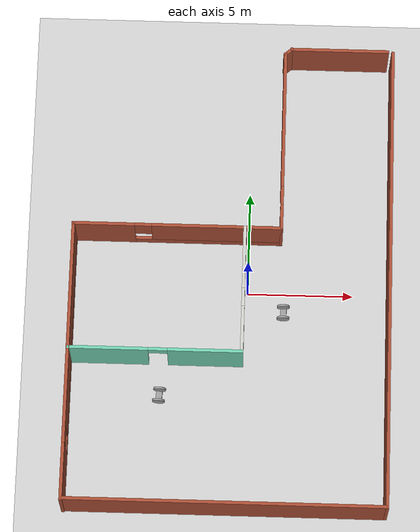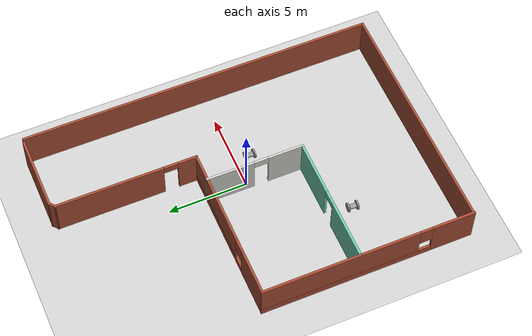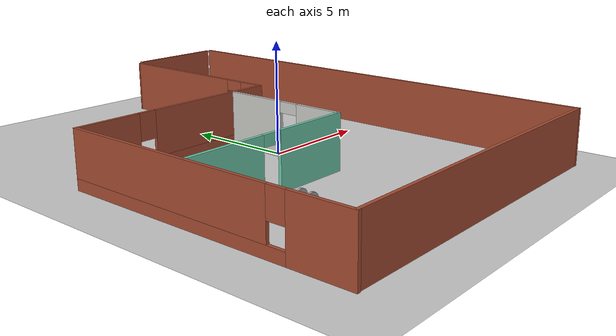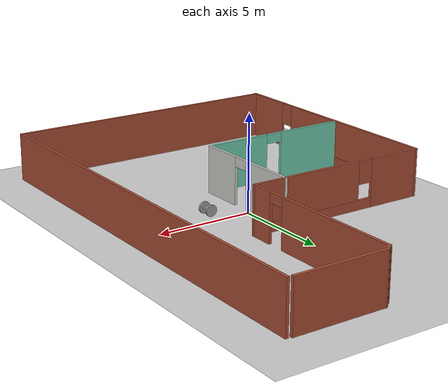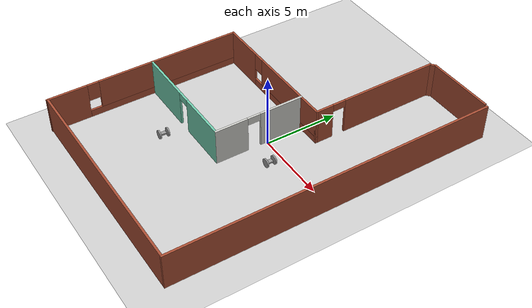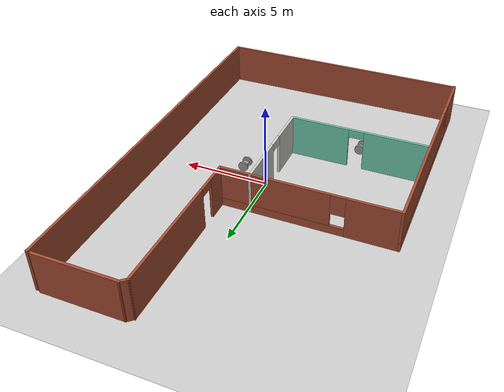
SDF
<sdf version="1.6">
 <world name="default">
  <light name="sun" type="directional">
   <pose>0 0 10 0 -0 0</pose>
   <diffuse>0.8 0.8 0.8 1</diffuse>
   <specular>0.2 0.2 0.2 1</specular>
   <attenuation>
    <range>1000</range>
    <constant>0.9</constant>
    <linear>0.01</linear>
    <quadratic>0.001</quadratic>
   </attenuation>
   <direction>-0.5 0.1 -0.9</direction>
  </light>
  <model name="ground_plane">
   <static>1</static>
   <link name="link">
    <collision name="collision">
     <geometry><plane><normal>0 0 1</normal><size>100 100</size></plane></geometry>
     <surface>
      <contact><collide_bitmask>65535</collide_bitmask></contact>
      <friction><ode><mu>100</mu><mu2>50</mu2></ode></friction>
     </surface>
    </collision>
    <visual name="visual">
     <cast_shadows>0</cast_shadows>
     <geometry><plane><normal>0 0 1</normal><size>100 100</size></plane></geometry>
     <material>
      <script><uri>file://media/materials/scripts/gazebo.material</uri><name>Gazebo/Grey</name></script>
     </material>
    </visual>
   </link>
  </model>
  <gravity>0 0 -9.8</gravity>
  <magnetic_field>6e-06 2.3e-05 -4.2e-05</magnetic_field>
  <atmosphere type="adiabatic"/>
  <physics name="default_physics" default="0" type="ode">
   <max_step_size>0.001</max_step_size>
   <real_time_factor>1</real_time_factor>
   <real_time_update_rate>1000</real_time_update_rate>
  </physics>
  <scene><ambient>0.4 0.4 0.4 1</ambient><background>0.7 0.7 0.7 1</background><shadows>1</shadows></scene>
  <spherical_coordinates>
   <surface_model>EARTH_WGS84</surface_model>
   <latitude_deg>0</latitude_deg>
   <longitude_deg>0</longitude_deg>
   <elevation>0</elevation>
   <heading_deg>0</heading_deg>
  </spherical_coordinates>
  <audio><device>default</device></audio>
  <model name="floor">
   <link name="Wall_1">
    <pose>-3.26123 11.2097 0 0 -0 0</pose>
    <visual name="Wall_1_Visual">
     <pose>0 0 1.25 0 -0 0</pose>
     <geometry><box><size>4.75 0.15 2.5</size></box></geometry>
     <material>
      <script><uri>file://media/materials/scripts/gazebo.material</uri><name>Gazebo/Bricks</name></script>
      <ambient>0.435294 0.796078 0.67451 1</ambient>
     </material>
     <meta><layer>0</layer></meta>
    </visual>
    <collision name="Wall_1_Collision">
     <pose>0 0 1.25 0 -0 0</pose>
     <geometry><box><size>4.75 0.15 2.5</size></box></geometry>
     <surface>
      <friction>
       <ode><mu>1</mu><mu2>1</mu2><fdir1>0 0 0</fdir1><slip1>0</slip1><slip2>0</slip2></ode>
       <torsional>
        <coefficient>1</coefficient>
        <patch_radius>0</patch_radius>
        <surface_radius>0</surface_radius>
        <use_patch_radius>1</use_patch_radius>
        <ode><slip>0</slip></ode>
       </torsional>
      </friction>
      <bounce><restitution_coefficient>0</restitution_coefficient><threshold>1e+06</threshold></bounce>
      <contact>
       <collide_without_contact>0</collide_without_contact>
       <collide_without_contact_bitmask>1</collide_without_contact_bitmask>
       <collide_bitmask>1</collide_bitmask>
       <ode>
        <soft_cfm>0</soft_cfm>
        <soft_erp>0.2</soft_erp>
        <kp>1e+13</kp>
        <kd>1</kd>
        <max_vel>0.01</max_vel>
        <min_depth>0</min_depth>
       </ode>
       <bullet>
        <split_impulse>1</split_impulse>
        <split_impulse_penetration_threshold>-0.01</split_impulse_penetration_threshold>
        <soft_cfm>0</soft_cfm>
        <soft_erp>0.2</soft_erp>
        <kp>1e+13</kp>
        <kd>1</kd>
       </bullet>
      </contact>
     </surface>
    </collision>
   </link>
   <link name="Wall_10">
    <pose>-5.71122 11.0847 0 0 -0 0.694738</pose>
    <visual name="Wall_10_Visual">
     <pose>0 0 1.25 0 -0 0</pose>
     <geometry><box><size>0.540512 0.15 2.5</size></box></geometry>
     <material>
      <script><uri>file://media/materials/scripts/gazebo.material</uri><name>Gazebo/Bricks</name></script>
      <ambient>0.435294 0.796078 0.67451 1</ambient>
     </material>
     <meta><layer>0</layer></meta>
    </visual>
    <collision name="Wall_10_Collision">
     <pose>0 0 1.25 0 -0 0</pose>
     <geometry><box><size>0.540512 0.15 2.5</size></box></geometry>
     <surface>
      <friction>
       <ode><mu>1</mu><mu2>1</mu2><fdir1>0 0 0</fdir1><slip1>0</slip1><slip2>0</slip2></ode>
       <torsional>
        <coefficient>1</coefficient>
        <patch_radius>0</patch_radius>
        <surface_radius>0</surface_radius>
        <use_patch_radius>1</use_patch_radius>
        <ode><slip>0</slip></ode>
       </torsional>
      </friction>
      <bounce><restitution_coefficient>0</restitution_coefficient><threshold>1e+06</threshold></bounce>
      <contact>
       <collide_without_contact>0</collide_without_contact>
       <collide_without_contact_bitmask>1</collide_without_contact_bitmask>
       <collide_bitmask>1</collide_bitmask>
       <ode>
        <soft_cfm>0</soft_cfm>
        <soft_erp>0.2</soft_erp>
        <kp>1e+13</kp>
        <kd>1</kd>
        <max_vel>0.01</max_vel>
        <min_depth>0</min_depth>
       </ode>
       <bullet>
        <split_impulse>1</split_impulse>
        <split_impulse_penetration_threshold>-0.01</split_impulse_penetration_threshold>
        <soft_cfm>0</soft_cfm>
        <soft_erp>0.2</soft_erp>
        <kp>1e+13</kp>
        <kd>1</kd>
       </bullet>
      </contact>
     </surface>
    </collision>
   </link>
   <link name="Wall_12">
    <pose>-7.58378 -0.937122 0 0 0 -1.5708</pose>
    <visual name="Wall_12_Visual_0">
     <pose>-1.59262 0 1.25 0 -0 0</pose>
     <geometry><box><size>3.06475 0.15 2.5</size></box></geometry>
     <material>
      <script><uri>file://media/materials/scripts/gazebo.material</uri><name>Gazebo/CeilingTiled</name></script>
      <ambient>0.435294 0.796078 0.67451 1</ambient>
     </material>
     <meta><layer>0</layer></meta>
    </visual>
    <visual name="Wall_12_Visual_1">
     <pose>1.98238 0 1.25 0 -0 0</pose>
     <geometry><box><size>2.28525 0.15 2.5</size></box></geometry>
     <material>
      <script><uri>file://media/materials/scripts/gazebo.material</uri><name>Gazebo/CeilingTiled</name></script>
      <ambient>0.435294 0.796078 0.67451 1</ambient>
     </material>
     <meta><layer>0</layer></meta>
    </visual>
    <visual name="Wall_12_Visual_2">
     <pose>0.389755 0 2.25 0 -0 0</pose>
     <geometry><box><size>0.9 0.15 0.5</size></box></geometry>
     <material>
      <script><uri>file://media/materials/scripts/gazebo.material</uri><name>Gazebo/CeilingTiled</name></script>
      <ambient>0.435294 0.796078 0.67451 1</ambient>
     </material>
     <meta><layer>0</layer></meta>
    </visual>
    <collision name="Wall_12_Collision_0">
     <pose>-1.59262 0 1.25 0 -0 0</pose>
     <geometry><box><size>3.06475 0.15 2.5</size></box></geometry>
     <surface>
      <friction>
       <ode><mu>1</mu><mu2>1</mu2><fdir1>0 0 0</fdir1><slip1>0</slip1><slip2>0</slip2></ode>
       <torsional>
        <coefficient>1</coefficient>
        <patch_radius>0</patch_radius>
        <surface_radius>0</surface_radius>
        <use_patch_radius>1</use_patch_radius>
        <ode><slip>0</slip></ode>
       </torsional>
      </friction>
      <bounce><restitution_coefficient>0</restitution_coefficient><threshold>1e+06</threshold></bounce>
      <contact>
       <collide_without_contact>0</collide_without_contact>
       <collide_without_contact_bitmask>1</collide_without_contact_bitmask>
       <collide_bitmask>1</collide_bitmask>
       <ode>
        <soft_cfm>0</soft_cfm>
        <soft_erp>0.2</soft_erp>
        <kp>1e+13</kp>
        <kd>1</kd>
        <max_vel>0.01</max_vel>
        <min_depth>0</min_depth>
       </ode>
       <bullet>
        <split_impulse>1</split_impulse>
        <split_impulse_penetration_threshold>-0.01</split_impulse_penetration_threshold>
        <soft_cfm>0</soft_cfm>
        <soft_erp>0.2</soft_erp>
        <kp>1e+13</kp>
        <kd>1</kd>
       </bullet>
      </contact>
     </surface>
    </collision>
    <collision name="Wall_12_Collision_1">
     <pose>1.98238 0 1.25 0 -0 0</pose>
     <geometry><box><size>2.28525 0.15 2.5</size></box></geometry>
     <surface>
      <friction>
       <ode><mu>1</mu><mu2>1</mu2><fdir1>0 0 0</fdir1><slip1>0</slip1><slip2>0</slip2></ode>
       <torsional>
        <coefficient>1</coefficient>
        <patch_radius>0</patch_radius>
        <surface_radius>0</surface_radius>
        <use_patch_radius>1</use_patch_radius>
        <ode><slip>0</slip></ode>
       </torsional>
      </friction>
      <bounce><restitution_coefficient>0</restitution_coefficient><threshold>1e+06</threshold></bounce>
      <contact>
       <collide_without_contact>0</collide_without_contact>
       <collide_without_contact_bitmask>1</collide_without_contact_bitmask>
       <collide_bitmask>1</collide_bitmask>
       <ode>
        <soft_cfm>0</soft_cfm>
        <soft_erp>0.2</soft_erp>
        <kp>1e+13</kp>
        <kd>1</kd>
        <max_vel>0.01</max_vel>
        <min_depth>0</min_depth>
       </ode>
       <bullet>
        <split_impulse>1</split_impulse>
        <split_impulse_penetration_threshold>-0.01</split_impulse_penetration_threshold>
        <soft_cfm>0</soft_cfm>
        <soft_erp>0.2</soft_erp>
        <kp>1e+13</kp>
        <kd>1</kd>
       </bullet>
      </contact>
     </surface>
    </collision>
    <collision name="Wall_12_Collision_2">
     <pose>0.389755 0 2.25 0 -0 0</pose>
     <geometry><box><size>0.9 0.15 0.5</size></box></geometry>
     <surface>
      <friction>
       <ode><mu>1</mu><mu2>1</mu2><fdir1>0 0 0</fdir1><slip1>0</slip1><slip2>0</slip2></ode>
       <torsional>
        <coefficient>1</coefficient>
        <patch_radius>0</patch_radius>
        <surface_radius>0</surface_radius>
        <use_patch_radius>1</use_patch_radius>
        <ode><slip>0</slip></ode>
       </torsional>
      </friction>
      <bounce><restitution_coefficient>0</restitution_coefficient><threshold>1e+06</threshold></bounce>
      <contact>
       <collide_without_contact>0</collide_without_contact>
       <collide_without_contact_bitmask>1</collide_without_contact_bitmask>
       <collide_bitmask>1</collide_bitmask>
       <ode>
        <soft_cfm>0</soft_cfm>
        <soft_erp>0.2</soft_erp>
        <kp>1e+13</kp>
        <kd>1</kd>
        <max_vel>0.01</max_vel>
        <min_depth>0</min_depth>
       </ode>
       <bullet>
        <split_impulse>1</split_impulse>
        <split_impulse_penetration_threshold>-0.01</split_impulse_penetration_threshold>
        <soft_cfm>0</soft_cfm>
        <soft_erp>0.2</soft_erp>
        <kp>1e+13</kp>
        <kd>1</kd>
       </bullet>
      </contact>
     </surface>
    </collision>
   </link>
   <link name="Wall_15">
    <pose>-11.6338 -3.98712 0 0 -0 3.14159</pose>
    <visual name="Wall_15_Visual_0">
     <pose>-2.35227 0 1.25 0 -0 0</pose>
     <geometry><box><size>3.54546 0.15 2.5</size></box></geometry>
     <material>
      <script><uri>file://media/materials/scripts/gazebo.material</uri><name>Gazebo/Grey</name></script>
      <ambient>0.435294 0.796078 0.67451 1</ambient>
     </material>
     <meta><layer>0</layer></meta>
    </visual>
    <visual name="Wall_15_Visual_1">
     <pose>2.22273 0 1.25 0 -0 0</pose>
     <geometry><box><size>3.80455 0.15 2.5</size></box></geometry>
     <material>
      <script><uri>file://media/materials/scripts/gazebo.material</uri><name>Gazebo/Grey</name></script>
      <ambient>0.435294 0.796078 0.67451 1</ambient>
     </material>
     <meta><layer>0</layer></meta>
    </visual>
    <visual name="Wall_15_Visual_2">
     <pose>-0.129545 0 2.25 0 -0 0</pose>
     <geometry><box><size>0.9 0.15 0.5</size></box></geometry>
     <material>
      <script><uri>file://media/materials/scripts/gazebo.material</uri><name>Gazebo/Grey</name></script>
      <ambient>0.435294 0.796078 0.67451 1</ambient>
     </material>
     <meta><layer>0</layer></meta>
    </visual>
    <collision name="Wall_15_Collision_0">
     <pose>-2.35227 0 1.25 0 -0 0</pose>
     <geometry><box><size>3.54546 0.15 2.5</size></box></geometry>
     <surface>
      <friction>
       <ode><mu>1</mu><mu2>1</mu2><fdir1>0 0 0</fdir1><slip1>0</slip1><slip2>0</slip2></ode>
       <torsional>
        <coefficient>1</coefficient>
        <patch_radius>0</patch_radius>
        <surface_radius>0</surface_radius>
        <use_patch_radius>1</use_patch_radius>
        <ode><slip>0</slip></ode>
       </torsional>
      </friction>
      <bounce><restitution_coefficient>0</restitution_coefficient><threshold>1e+06</threshold></bounce>
      <contact>
       <collide_without_contact>0</collide_without_contact>
       <collide_without_contact_bitmask>1</collide_without_contact_bitmask>
       <collide_bitmask>1</collide_bitmask>
       <ode>
        <soft_cfm>0</soft_cfm>
        <soft_erp>0.2</soft_erp>
        <kp>1e+13</kp>
        <kd>1</kd>
        <max_vel>0.01</max_vel>
        <min_depth>0</min_depth>
       </ode>
       <bullet>
        <split_impulse>1</split_impulse>
        <split_impulse_penetration_threshold>-0.01</split_impulse_penetration_threshold>
        <soft_cfm>0</soft_cfm>
        <soft_erp>0.2</soft_erp>
        <kp>1e+13</kp>
        <kd>1</kd>
       </bullet>
      </contact>
     </surface>
    </collision>
    <collision name="Wall_15_Collision_1">
     <pose>2.22273 0 1.25 0 -0 0</pose>
     <geometry><box><size>3.80455 0.15 2.5</size></box></geometry>
     <surface>
      <friction>
       <ode><mu>1</mu><mu2>1</mu2><fdir1>0 0 0</fdir1><slip1>0</slip1><slip2>0</slip2></ode>
       <torsional>
        <coefficient>1</coefficient>
        <patch_radius>0</patch_radius>
        <surface_radius>0</surface_radius>
        <use_patch_radius>1</use_patch_radius>
        <ode><slip>0</slip></ode>
       </torsional>
      </friction>
      <bounce><restitution_coefficient>0</restitution_coefficient><threshold>1e+06</threshold></bounce>
      <contact>
       <collide_without_contact>0</collide_without_contact>
       <collide_without_contact_bitmask>1</collide_without_contact_bitmask>
       <collide_bitmask>1</collide_bitmask>
       <ode>
        <soft_cfm>0</soft_cfm>
        <soft_erp>0.2</soft_erp>
        <kp>1e+13</kp>
        <kd>1</kd>
        <max_vel>0.01</max_vel>
        <min_depth>0</min_depth>
       </ode>
       <bullet>
        <split_impulse>1</split_impulse>
        <split_impulse_penetration_threshold>-0.01</split_impulse_penetration_threshold>
        <soft_cfm>0</soft_cfm>
        <soft_erp>0.2</soft_erp>
        <kp>1e+13</kp>
        <kd>1</kd>
       </bullet>
      </contact>
     </surface>
    </collision>
    <collision name="Wall_15_Collision_2">
     <pose>-0.129545 0 2.25 0 -0 0</pose>
     <geometry><box><size>0.9 0.15 0.5</size></box></geometry>
     <surface>
      <friction>
       <ode><mu>1</mu><mu2>1</mu2><fdir1>0 0 0</fdir1><slip1>0</slip1><slip2>0</slip2></ode>
       <torsional>
        <coefficient>1</coefficient>
        <patch_radius>0</patch_radius>
        <surface_radius>0</surface_radius>
        <use_patch_radius>1</use_patch_radius>
        <ode><slip>0</slip></ode>
       </torsional>
      </friction>
      <bounce><restitution_coefficient>0</restitution_coefficient><threshold>1e+06</threshold></bounce>
      <contact>
       <collide_without_contact>0</collide_without_contact>
       <collide_without_contact_bitmask>1</collide_without_contact_bitmask>
       <collide_bitmask>1</collide_bitmask>
       <ode>
        <soft_cfm>0</soft_cfm>
        <soft_erp>0.2</soft_erp>
        <kp>1e+13</kp>
        <kd>1</kd>
        <max_vel>0.01</max_vel>
        <min_depth>0</min_depth>
       </ode>
       <bullet>
        <split_impulse>1</split_impulse>
        <split_impulse_penetration_threshold>-0.01</split_impulse_penetration_threshold>
        <soft_cfm>0</soft_cfm>
        <soft_erp>0.2</soft_erp>
        <kp>1e+13</kp>
        <kd>1</kd>
       </bullet>
      </contact>
     </surface>
    </collision>
   </link>
   <link name="Wall_1_clone">
    <pose>-8.2177 -11.2047 0 0 -0 0</pose>
    <inertial>
     <mass>1</mass>
     <inertia><ixx>1</ixx><ixy>0</ixy><ixz>0</ixz><iyy>1</iyy><iyz>0</iyz><izz>1</izz></inertia>
    </inertial>
    <visual name="Wall_1_Visual">
     <pose>0 0 1.25 0 -0 0</pose>
     <geometry><box><size>15 0.15 2.5</size></box></geometry>
     <material>
      <script><uri>file://media/materials/scripts/gazebo.material</uri><name>Gazebo/Bricks</name></script>
      <ambient>0.435 0.796 0.675 1</ambient>
      <shader type="vertex"><normal_map>__default__</normal_map></shader>
      <diffuse>1 1 1 1</diffuse>
      <specular>0.2 0.2 0.2 1</specular>
      <emissive>0 0 0 1</emissive>
     </material>
     <meta><layer>0</layer></meta>
    </visual>
    <collision name="Wall_1_Collision">
     <pose>0 0 1.25 0 -0 0</pose>
     <geometry><box><size>15 0.15 2.5</size></box></geometry>
     <surface>
      <friction>
       <ode><mu>1</mu><mu2>1</mu2><fdir1>0 0 0</fdir1><slip1>0</slip1><slip2>0</slip2></ode>
       <torsional>
        <coefficient>1</coefficient>
        <patch_radius>0</patch_radius>
        <surface_radius>0</surface_radius>
        <use_patch_radius>1</use_patch_radius>
        <ode><slip>0</slip></ode>
       </torsional>
      </friction>
      <bounce><restitution_coefficient>0</restitution_coefficient><threshold>1e+06</threshold></bounce>
      <contact>
       <collide_without_contact>0</collide_without_contact>
       <collide_without_contact_bitmask>1</collide_without_contact_bitmask>
       <collide_bitmask>1</collide_bitmask>
       <ode>
        <soft_cfm>0</soft_cfm>
        <soft_erp>0.2</soft_erp>
        <kp>1e+13</kp>
        <kd>1</kd>
        <max_vel>0.01</max_vel>
        <min_depth>0</min_depth>
       </ode>
       <bullet>
        <split_impulse>1</split_impulse>
        <split_impulse_penetration_threshold>-0.01</split_impulse_penetration_threshold>
        <soft_cfm>0</soft_cfm>
        <soft_erp>0.2</soft_erp>
        <kp>1e+13</kp>
        <kd>1</kd>
       </bullet>
      </contact>
     </surface>
    </collision>
   </link>
   <link name="Wall_2">
    <pose>-0.689664 -0.033023 0 0 0 -1.5708</pose>
    <inertial>
     <inertia><ixx>0</ixx><ixy>0</ixy><ixz>0</ixz><iyy>0</iyy><iyz>0</iyz><izz>0</izz></inertia>
     <mass>0</mass>
    </inertial>
    <visual name="Wall_2_Visual">
     <pose>0 0 1.25 0 -0 0</pose>
     <geometry><box><size>22.5 0.15 2.5</size></box></geometry>
     <material>
      <script><uri>file://media/materials/scripts/gazebo.material</uri><name>Gazebo/Bricks</name></script>
      <ambient>0.435 0.796 0.675 1</ambient>
      <shader type="vertex"><normal_map>__default__</normal_map></shader>
      <diffuse>1 1 1 1</diffuse>
      <specular>0.2 0.2 0.2 1</specular>
      <emissive>0 0 0 1</emissive>
     </material>
     <meta><layer>0</layer></meta>
    </visual>
    <collision name="Wall_2_Collision">
     <pose>0 0 1.25 0 -0 0</pose>
     <geometry><box><size>22.5 0.15 2.5</size></box></geometry>
     <surface>
      <friction>
       <ode><mu>1</mu><mu2>1</mu2><fdir1>0 0 0</fdir1><slip1>0</slip1><slip2>0</slip2></ode>
       <torsional>
        <coefficient>1</coefficient>
        <patch_radius>0</patch_radius>
        <surface_radius>0</surface_radius>
        <use_patch_radius>1</use_patch_radius>
        <ode><slip>0</slip></ode>
       </torsional>
      </friction>
      <bounce><restitution_coefficient>0</restitution_coefficient><threshold>1e+06</threshold></bounce>
      <contact>
       <collide_without_contact>0</collide_without_contact>
       <collide_without_contact_bitmask>1</collide_without_contact_bitmask>
       <collide_bitmask>1</collide_bitmask>
       <ode>
        <soft_cfm>0</soft_cfm>
        <soft_erp>0.2</soft_erp>
        <kp>1e+13</kp>
        <kd>1</kd>
        <max_vel>0.01</max_vel>
        <min_depth>0</min_depth>
       </ode>
       <bullet>
        <split_impulse>1</split_impulse>
        <split_impulse_penetration_threshold>-0.01</split_impulse_penetration_threshold>
        <soft_cfm>0</soft_cfm>
        <soft_erp>0.2</soft_erp>
        <kp>1e+13</kp>
        <kd>1</kd>
       </bullet>
      </contact>
     </surface>
    </collision>
   </link>
   <link name="Wall_6">
    <pose>-15.7112 -4.56531 0 0 -0 1.5708</pose>
    <visual name="Wall_6_Visual_0">
     <pose>-5.38753 0 1.25 0 -0 0</pose>
     <geometry><box><size>2.72495 0.15 2.5</size></box></geometry>
     <material>
      <script><uri>file://media/materials/scripts/gazebo.material</uri><name>Gazebo/Bricks</name></script>
      <ambient>0.435294 0.796078 0.67451 1</ambient>
     </material>
     <meta><layer>0</layer></meta>
    </visual>
    <visual name="Wall_6_Visual_1">
     <pose>1.36247 0 0.25 0 -0 0</pose>
     <geometry><box><size>10.7751 0.15 0.5</size></box></geometry>
     <material>
      <script><uri>file://media/materials/scripts/gazebo.material</uri><name>Gazebo/Bricks</name></script>
      <ambient>0.435294 0.796078 0.67451 1</ambient>
     </material>
     <meta><layer>0</layer></meta>
    </visual>
    <visual name="Wall_6_Visual_2">
     <pose>1.76247 0 1.5 0 -0 0</pose>
     <geometry><box><size>9.97505 0.15 2</size></box></geometry>
     <material>
      <script><uri>file://media/materials/scripts/gazebo.material</uri><name>Gazebo/Bricks</name></script>
      <ambient>0.435294 0.796078 0.67451 1</ambient>
     </material>
     <meta><layer>0</layer></meta>
    </visual>
    <visual name="Wall_6_Visual_3">
     <pose>-3.62505 0 1.9 0 -0 0</pose>
     <geometry><box><size>0.8 0.15 1.2</size></box></geometry>
     <material>
      <script><uri>file://media/materials/scripts/gazebo.material</uri><name>Gazebo/Bricks</name></script>
      <ambient>0.435294 0.796078 0.67451 1</ambient>
     </material>
     <meta><layer>0</layer></meta>
    </visual>
    <collision name="Wall_6_Collision_1">
     <pose>1.36247 0 0.25 0 -0 0</pose>
     <geometry><box><size>10.7751 0.15 0.5</size></box></geometry>
     <surface>
      <friction>
       <ode><mu>1</mu><mu2>1</mu2><fdir1>0 0 0</fdir1><slip1>0</slip1><slip2>0</slip2></ode>
       <torsional>
        <coefficient>1</coefficient>
        <patch_radius>0</patch_radius>
        <surface_radius>0</surface_radius>
        <use_patch_radius>1</use_patch_radius>
        <ode><slip>0</slip></ode>
       </torsional>
      </friction>
      <bounce><restitution_coefficient>0</restitution_coefficient><threshold>1e+06</threshold></bounce>
      <contact>
       <collide_without_contact>0</collide_without_contact>
       <collide_without_contact_bitmask>1</collide_without_contact_bitmask>
       <collide_bitmask>1</collide_bitmask>
       <ode>
        <soft_cfm>0</soft_cfm>
        <soft_erp>0.2</soft_erp>
        <kp>1e+13</kp>
        <kd>1</kd>
        <max_vel>0.01</max_vel>
        <min_depth>0</min_depth>
       </ode>
       <bullet>
        <split_impulse>1</split_impulse>
        <split_impulse_penetration_threshold>-0.01</split_impulse_penetration_threshold>
        <soft_cfm>0</soft_cfm>
        <soft_erp>0.2</soft_erp>
        <kp>1e+13</kp>
        <kd>1</kd>
       </bullet>
      </contact>
     </surface>
    </collision>
    <collision name="Wall_6_Collision_0">
     <pose>-5.38753 0 1.25 0 -0 0</pose>
     <geometry><box><size>2.72495 0.15 2.5</size></box></geometry>
     <surface>
      <friction>
       <ode><mu>1</mu><mu2>1</mu2><fdir1>0 0 0</fdir1><slip1>0</slip1><slip2>0</slip2></ode>
       <torsional>
        <coefficient>1</coefficient>
        <patch_radius>0</patch_radius>
        <surface_radius>0</surface_radius>
        <use_patch_radius>1</use_patch_radius>
        <ode><slip>0</slip></ode>
       </torsional>
      </friction>
      <bounce><restitution_coefficient>0</restitution_coefficient><threshold>1e+06</threshold></bounce>
      <contact>
       <collide_without_contact>0</collide_without_contact>
       <collide_without_contact_bitmask>1</collide_without_contact_bitmask>
       <collide_bitmask>1</collide_bitmask>
       <ode>
        <soft_cfm>0</soft_cfm>
        <soft_erp>0.2</soft_erp>
        <kp>1e+13</kp>
        <kd>1</kd>
        <max_vel>0.01</max_vel>
        <min_depth>0</min_depth>
       </ode>
       <bullet>
        <split_impulse>1</split_impulse>
        <split_impulse_penetration_threshold>-0.01</split_impulse_penetration_threshold>
        <soft_cfm>0</soft_cfm>
        <soft_erp>0.2</soft_erp>
        <kp>1e+13</kp>
        <kd>1</kd>
       </bullet>
      </contact>
     </surface>
    </collision>
    <collision name="Wall_6_Collision_2">
     <pose>1.76247 0 1.5 0 -0 0</pose>
     <geometry><box><size>9.97505 0.15 2</size></box></geometry>
     <surface>
      <friction>
       <ode><mu>1</mu><mu2>1</mu2><fdir1>0 0 0</fdir1><slip1>0</slip1><slip2>0</slip2></ode>
       <torsional>
        <coefficient>1</coefficient>
        <patch_radius>0</patch_radius>
        <surface_radius>0</surface_radius>
        <use_patch_radius>1</use_patch_radius>
        <ode><slip>0</slip></ode>
       </torsional>
      </friction>
      <bounce><restitution_coefficient>0</restitution_coefficient><threshold>1e+06</threshold></bounce>
      <contact>
       <collide_without_contact>0</collide_without_contact>
       <collide_without_contact_bitmask>1</collide_without_contact_bitmask>
       <collide_bitmask>1</collide_bitmask>
       <ode>
        <soft_cfm>0</soft_cfm>
        <soft_erp>0.2</soft_erp>
        <kp>1e+13</kp>
        <kd>1</kd>
        <max_vel>0.01</max_vel>
        <min_depth>0</min_depth>
       </ode>
       <bullet>
        <split_impulse>1</split_impulse>
        <split_impulse_penetration_threshold>-0.01</split_impulse_penetration_threshold>
        <soft_cfm>0</soft_cfm>
        <soft_erp>0.2</soft_erp>
        <kp>1e+13</kp>
        <kd>1</kd>
       </bullet>
      </contact>
     </surface>
    </collision>
    <collision name="Wall_6_Collision_3">
     <pose>-3.62505 0 1.9 0 -0 0</pose>
     <geometry><box><size>0.8 0.15 1.2</size></box></geometry>
     <surface>
      <friction>
       <ode><mu>1</mu><mu2>1</mu2><fdir1>0 0 0</fdir1><slip1>0</slip1><slip2>0</slip2></ode>
       <torsional>
        <coefficient>1</coefficient>
        <patch_radius>0</patch_radius>
        <surface_radius>0</surface_radius>
        <use_patch_radius>1</use_patch_radius>
        <ode><slip>0</slip></ode>
       </torsional>
      </friction>
      <bounce><restitution_coefficient>0</restitution_coefficient><threshold>1e+06</threshold></bounce>
      <contact>
       <collide_without_contact>0</collide_without_contact>
       <collide_without_contact_bitmask>1</collide_without_contact_bitmask>
       <collide_bitmask>1</collide_bitmask>
       <ode>
        <soft_cfm>0</soft_cfm>
        <soft_erp>0.2</soft_erp>
        <kp>1e+13</kp>
        <kd>1</kd>
        <max_vel>0.01</max_vel>
        <min_depth>0</min_depth>
       </ode>
       <bullet>
        <split_impulse>1</split_impulse>
        <split_impulse_penetration_threshold>-0.01</split_impulse_penetration_threshold>
        <soft_cfm>0</soft_cfm>
        <soft_erp>0.2</soft_erp>
        <kp>1e+13</kp>
        <kd>1</kd>
       </bullet>
      </contact>
     </surface>
    </collision>
   </link>
   <link name="Wall_7">
    <pose>-10.7862 2.10968 0 0 -0 0</pose>
    <visual name="Wall_7_Visual_0">
     <pose>-3.51411 0 1.25 0 -0 0</pose>
     <geometry><box><size>2.97177 0.15 2.5</size></box></geometry>
     <material>
      <script><uri>file://media/materials/scripts/gazebo.material</uri><name>Gazebo/Bricks</name></script>
      <ambient>0.435294 0.796078 0.67451 1</ambient>
     </material>
     <meta><layer>0</layer></meta>
    </visual>
    <visual name="Wall_7_Visual_1">
     <pose>1.48589 0 0.25 0 -0 0</pose>
     <geometry><box><size>7.02823 0.15 0.5</size></box></geometry>
     <material>
      <script><uri>file://media/materials/scripts/gazebo.material</uri><name>Gazebo/Bricks</name></script>
      <ambient>0.435294 0.796078 0.67451 1</ambient>
     </material>
     <meta><layer>0</layer></meta>
    </visual>
    <visual name="Wall_7_Visual_2">
     <pose>1.88589 0 1.5 0 -0 0</pose>
     <geometry><box><size>6.22823 0.15 2</size></box></geometry>
     <material>
      <script><uri>file://media/materials/scripts/gazebo.material</uri><name>Gazebo/Bricks</name></script>
      <ambient>0.435294 0.796078 0.67451 1</ambient>
     </material>
     <meta><layer>0</layer></meta>
    </visual>
    <visual name="Wall_7_Visual_3">
     <pose>-1.62823 0 1.9 0 -0 0</pose>
     <geometry><box><size>0.8 0.15 1.2</size></box></geometry>
     <material>
      <script><uri>file://media/materials/scripts/gazebo.material</uri><name>Gazebo/Bricks</name></script>
      <ambient>0.435294 0.796078 0.67451 1</ambient>
     </material>
     <meta><layer>0</layer></meta>
    </visual>
    <collision name="Wall_7_Collision_0">
     <pose>-3.51411 0 1.25 0 -0 0</pose>
     <geometry><box><size>2.97177 0.15 2.5</size></box></geometry>
     <surface>
      <friction>
       <ode><mu>1</mu><mu2>1</mu2><fdir1>0 0 0</fdir1><slip1>0</slip1><slip2>0</slip2></ode>
       <torsional>
        <coefficient>1</coefficient>
        <patch_radius>0</patch_radius>
        <surface_radius>0</surface_radius>
        <use_patch_radius>1</use_patch_radius>
        <ode><slip>0</slip></ode>
       </torsional>
      </friction>
      <bounce><restitution_coefficient>0</restitution_coefficient><threshold>1e+06</threshold></bounce>
      <contact>
       <collide_without_contact>0</collide_without_contact>
       <collide_without_contact_bitmask>1</collide_without_contact_bitmask>
       <collide_bitmask>1</collide_bitmask>
       <ode>
        <soft_cfm>0</soft_cfm>
        <soft_erp>0.2</soft_erp>
        <kp>1e+13</kp>
        <kd>1</kd>
        <max_vel>0.01</max_vel>
        <min_depth>0</min_depth>
       </ode>
       <bullet>
        <split_impulse>1</split_impulse>
        <split_impulse_penetration_threshold>-0.01</split_impulse_penetration_threshold>
        <soft_cfm>0</soft_cfm>
        <soft_erp>0.2</soft_erp>
        <kp>1e+13</kp>
        <kd>1</kd>
       </bullet>
      </contact>
     </surface>
    </collision>
    <collision name="Wall_7_Collision_1">
     <pose>1.48589 0 0.25 0 -0 0</pose>
     <geometry><box><size>7.02823 0.15 0.5</size></box></geometry>
     <surface>
      <friction>
       <ode><mu>1</mu><mu2>1</mu2><fdir1>0 0 0</fdir1><slip1>0</slip1><slip2>0</slip2></ode>
       <torsional>
        <coefficient>1</coefficient>
        <patch_radius>0</patch_radius>
        <surface_radius>0</surface_radius>
        <use_patch_radius>1</use_patch_radius>
        <ode><slip>0</slip></ode>
       </torsional>
      </friction>
      <bounce><restitution_coefficient>0</restitution_coefficient><threshold>1e+06</threshold></bounce>
      <contact>
       <collide_without_contact>0</collide_without_contact>
       <collide_without_contact_bitmask>1</collide_without_contact_bitmask>
       <collide_bitmask>1</collide_bitmask>
       <ode>
        <soft_cfm>0</soft_cfm>
        <soft_erp>0.2</soft_erp>
        <kp>1e+13</kp>
        <kd>1</kd>
        <max_vel>0.01</max_vel>
        <min_depth>0</min_depth>
       </ode>
       <bullet>
        <split_impulse>1</split_impulse>
        <split_impulse_penetration_threshold>-0.01</split_impulse_penetration_threshold>
        <soft_cfm>0</soft_cfm>
        <soft_erp>0.2</soft_erp>
        <kp>1e+13</kp>
        <kd>1</kd>
       </bullet>
      </contact>
     </surface>
    </collision>
    <collision name="Wall_7_Collision_2">
     <pose>1.88589 0 1.5 0 -0 0</pose>
     <geometry><box><size>6.22823 0.15 2</size></box></geometry>
     <surface>
      <friction>
       <ode><mu>1</mu><mu2>1</mu2><fdir1>0 0 0</fdir1><slip1>0</slip1><slip2>0</slip2></ode>
       <torsional>
        <coefficient>1</coefficient>
        <patch_radius>0</patch_radius>
        <surface_radius>0</surface_radius>
        <use_patch_radius>1</use_patch_radius>
        <ode><slip>0</slip></ode>
       </torsional>
      </friction>
      <bounce><restitution_coefficient>0</restitution_coefficient><threshold>1e+06</threshold></bounce>
      <contact>
       <collide_without_contact>0</collide_without_contact>
       <collide_without_contact_bitmask>1</collide_without_contact_bitmask>
       <collide_bitmask>1</collide_bitmask>
       <ode>
        <soft_cfm>0</soft_cfm>
        <soft_erp>0.2</soft_erp>
        <kp>1e+13</kp>
        <kd>1</kd>
        <max_vel>0.01</max_vel>
        <min_depth>0</min_depth>
       </ode>
       <bullet>
        <split_impulse>1</split_impulse>
        <split_impulse_penetration_threshold>-0.01</split_impulse_penetration_threshold>
        <soft_cfm>0</soft_cfm>
        <soft_erp>0.2</soft_erp>
        <kp>1e+13</kp>
        <kd>1</kd>
       </bullet>
      </contact>
     </surface>
    </collision>
    <collision name="Wall_7_Collision_3">
     <pose>-1.62823 0 1.9 0 -0 0</pose>
     <geometry><box><size>0.8 0.15 1.2</size></box></geometry>
     <surface>
      <friction>
       <ode><mu>1</mu><mu2>1</mu2><fdir1>0 0 0</fdir1><slip1>0</slip1><slip2>0</slip2></ode>
       <torsional>
        <coefficient>1</coefficient>
        <patch_radius>0</patch_radius>
        <surface_radius>0</surface_radius>
        <use_patch_radius>1</use_patch_radius>
        <ode><slip>0</slip></ode>
       </torsional>
      </friction>
      <bounce><restitution_coefficient>0</restitution_coefficient><threshold>1e+06</threshold></bounce>
      <contact>
       <collide_without_contact>0</collide_without_contact>
       <collide_without_contact_bitmask>1</collide_without_contact_bitmask>
       <collide_bitmask>1</collide_bitmask>
       <ode>
        <soft_cfm>0</soft_cfm>
        <soft_erp>0.2</soft_erp>
        <kp>1e+13</kp>
        <kd>1</kd>
        <max_vel>0.01</max_vel>
        <min_depth>0</min_depth>
       </ode>
       <bullet>
        <split_impulse>1</split_impulse>
        <split_impulse_penetration_threshold>-0.01</split_impulse_penetration_threshold>
        <soft_cfm>0</soft_cfm>
        <soft_erp>0.2</soft_erp>
        <kp>1e+13</kp>
        <kd>1</kd>
       </bullet>
      </contact>
     </surface>
    </collision>
   </link>
   <link name="Wall_9">
    <pose>-5.86123 6.53468 0 0 -0 1.5708</pose>
    <visual name="Wall_9_Visual_0">
     <pose>-3.86428 0 1.25 0 -0 0</pose>
     <geometry><box><size>1.27144 0.15 2.5</size></box></geometry>
     <material>
      <script><uri>file://media/materials/scripts/gazebo.material</uri><name>Gazebo/Bricks</name></script>
      <ambient>0.435294 0.796078 0.67451 1</ambient>
     </material>
     <meta><layer>0</layer></meta>
    </visual>
    <visual name="Wall_9_Visual_1">
     <pose>1.08572 0 1.25 0 -0 0</pose>
     <geometry><box><size>6.82856 0.15 2.5</size></box></geometry>
     <material>
      <script><uri>file://media/materials/scripts/gazebo.material</uri><name>Gazebo/Bricks</name></script>
      <ambient>0.435294 0.796078 0.67451 1</ambient>
     </material>
     <meta><layer>0</layer></meta>
    </visual>
    <visual name="Wall_9_Visual_2">
     <pose>-2.77856 0 2.25 0 -0 0</pose>
     <geometry><box><size>0.9 0.15 0.5</size></box></geometry>
     <material>
      <script><uri>file://media/materials/scripts/gazebo.material</uri><name>Gazebo/Bricks</name></script>
      <ambient>0.435294 0.796078 0.67451 1</ambient>
     </material>
     <meta><layer>0</layer></meta>
    </visual>
    <collision name="Wall_9_Collision_0">
     <pose>-3.86428 0 1.25 0 -0 0</pose>
     <geometry><box><size>1.27144 0.15 2.5</size></box></geometry>
     <surface>
      <friction>
       <ode><mu>1</mu><mu2>1</mu2><fdir1>0 0 0</fdir1><slip1>0</slip1><slip2>0</slip2></ode>
       <torsional>
        <coefficient>1</coefficient>
        <patch_radius>0</patch_radius>
        <surface_radius>0</surface_radius>
        <use_patch_radius>1</use_patch_radius>
        <ode><slip>0</slip></ode>
       </torsional>
      </friction>
      <bounce><restitution_coefficient>0</restitution_coefficient><threshold>1e+06</threshold></bounce>
      <contact>
       <collide_without_contact>0</collide_without_contact>
       <collide_without_contact_bitmask>1</collide_without_contact_bitmask>
       <collide_bitmask>1</collide_bitmask>
       <ode>
        <soft_cfm>0</soft_cfm>
        <soft_erp>0.2</soft_erp>
        <kp>1e+13</kp>
        <kd>1</kd>
        <max_vel>0.01</max_vel>
        <min_depth>0</min_depth>
       </ode>
       <bullet>
        <split_impulse>1</split_impulse>
        <split_impulse_penetration_threshold>-0.01</split_impulse_penetration_threshold>
        <soft_cfm>0</soft_cfm>
        <soft_erp>0.2</soft_erp>
        <kp>1e+13</kp>
        <kd>1</kd>
       </bullet>
      </contact>
     </surface>
    </collision>
    <collision name="Wall_9_Collision_1">
     <pose>1.08572 0 1.25 0 -0 0</pose>
     <geometry><box><size>6.82856 0.15 2.5</size></box></geometry>
     <surface>
      <friction>
       <ode><mu>1</mu><mu2>1</mu2><fdir1>0 0 0</fdir1><slip1>0</slip1><slip2>0</slip2></ode>
       <torsional>
        <coefficient>1</coefficient>
        <patch_radius>0</patch_radius>
        <surface_radius>0</surface_radius>
        <use_patch_radius>1</use_patch_radius>
        <ode><slip>0</slip></ode>
       </torsional>
      </friction>
      <bounce><restitution_coefficient>0</restitution_coefficient><threshold>1e+06</threshold></bounce>
      <contact>
       <collide_without_contact>0</collide_without_contact>
       <collide_without_contact_bitmask>1</collide_without_contact_bitmask>
       <collide_bitmask>1</collide_bitmask>
       <ode>
        <soft_cfm>0</soft_cfm>
        <soft_erp>0.2</soft_erp>
        <kp>1e+13</kp>
        <kd>1</kd>
        <max_vel>0.01</max_vel>
        <min_depth>0</min_depth>
       </ode>
       <bullet>
        <split_impulse>1</split_impulse>
        <split_impulse_penetration_threshold>-0.01</split_impulse_penetration_threshold>
        <soft_cfm>0</soft_cfm>
        <soft_erp>0.2</soft_erp>
        <kp>1e+13</kp>
        <kd>1</kd>
       </bullet>
      </contact>
     </surface>
    </collision>
    <collision name="Wall_9_Collision_2">
     <pose>-2.77856 0 2.25 0 -0 0</pose>
     <geometry><box><size>0.9 0.15 0.5</size></box></geometry>
     <surface>
      <friction>
       <ode><mu>1</mu><mu2>1</mu2><fdir1>0 0 0</fdir1><slip1>0</slip1><slip2>0</slip2></ode>
       <torsional>
        <coefficient>1</coefficient>
        <patch_radius>0</patch_radius>
        <surface_radius>0</surface_radius>
        <use_patch_radius>1</use_patch_radius>
        <ode><slip>0</slip></ode>
       </torsional>
      </friction>
      <bounce><restitution_coefficient>0</restitution_coefficient><threshold>1e+06</threshold></bounce>
      <contact>
       <collide_without_contact>0</collide_without_contact>
       <collide_without_contact_bitmask>1</collide_without_contact_bitmask>
       <collide_bitmask>1</collide_bitmask>
       <ode>
        <soft_cfm>0</soft_cfm>
        <soft_erp>0.2</soft_erp>
        <kp>1e+13</kp>
        <kd>1</kd>
        <max_vel>0.01</max_vel>
        <min_depth>0</min_depth>
       </ode>
       <bullet>
        <split_impulse>1</split_impulse>
        <split_impulse_penetration_threshold>-0.01</split_impulse_penetration_threshold>
        <soft_cfm>0</soft_cfm>
        <soft_erp>0.2</soft_erp>
        <kp>1e+13</kp>
        <kd>1</kd>
       </bullet>
      </contact>
     </surface>
    </collision>
   </link>
   <static>1</static>
   <pose>7.37858 0.4452 0 0 -0 0</pose>
  </model>
  <model name="robot">
   <link name="link_0_clone">
    <pose>-4e-06 -0.250033 -1e-06 1.5707 -0 0</pose>
    <inertial>
     <mass>1</mass>
     <inertia><ixx>0.145833</ixx><ixy>0</ixy><ixz>0</ixz><iyy>0.145833</iyy><iyz>0</iyz><izz>0.125</izz></inertia>
    </inertial>
    <visual name="visual">
     <geometry><cylinder><radius>0.3</radius><length>0.1</length></cylinder></geometry>
     <material>
      <lighting>1</lighting>
      <script><uri>file://media/materials/scripts/gazebo.material</uri><name>Gazebo/Grey</name></script>
      <shader type="pixel"><normal_map>__default__</normal_map></shader>
      <ambient>0.3 0.3 0.3 1</ambient>
      <diffuse>0.7 0.7 0.7 1</diffuse>
      <specular>0.01 0.01 0.01 1</specular>
      <emissive>0 0 0 1</emissive>
     </material>
    </visual>
    <collision name="collision">
     <geometry><cylinder><radius>0.3</radius><length>0.1</length></cylinder></geometry>
     <surface>
      <friction>
       <ode><mu>1</mu><mu2>1</mu2><fdir1>0 0 0</fdir1><slip1>0</slip1><slip2>0</slip2></ode>
       <torsional>
        <coefficient>1</coefficient>
        <patch_radius>0</patch_radius>
        <surface_radius>0</surface_radius>
        <use_patch_radius>1</use_patch_radius>
        <ode><slip>0</slip></ode>
       </torsional>
      </friction>
      <bounce><restitution_coefficient>0</restitution_coefficient><threshold>1e+06</threshold></bounce>
      <contact>
       <collide_without_contact>0</collide_without_contact>
       <collide_without_contact_bitmask>1</collide_without_contact_bitmask>
       <collide_bitmask>1</collide_bitmask>
       <ode>
        <soft_cfm>0</soft_cfm>
        <soft_erp>0.2</soft_erp>
        <kp>1e+13</kp>
        <kd>1</kd>
        <max_vel>0.01</max_vel>
        <min_depth>0</min_depth>
       </ode>
       <bullet>
        <split_impulse>1</split_impulse>
        <split_impulse_penetration_threshold>-0.01</split_impulse_penetration_threshold>
        <soft_cfm>0</soft_cfm>
        <soft_erp>0.2</soft_erp>
        <kp>1e+13</kp>
        <kd>1</kd>
       </bullet>
      </contact>
     </surface>
    </collision>
   </link>
   <link name="link_0_clone_clone">
    <pose>0 0.319647 1e-06 1.5707 -0 0</pose>
    <inertial>
     <mass>1</mass>
     <inertia><ixx>0.145833</ixx><ixy>0</ixy><ixz>0</ixz><iyy>0.145833</iyy><iyz>0</iyz><izz>0.125</izz></inertia>
    </inertial>
    <visual name="visual">
     <geometry><cylinder><radius>0.3</radius><length>0.1</length></cylinder></geometry>
     <material>
      <lighting>1</lighting>
      <script><uri>file://media/materials/scripts/gazebo.material</uri><name>Gazebo/Grey</name></script>
      <shader type="pixel"><normal_map>__default__</normal_map></shader>
      <ambient>0.3 0.3 0.3 1</ambient>
      <diffuse>0.7 0.7 0.7 1</diffuse>
      <specular>0.01 0.01 0.01 1</specular>
      <emissive>0 0 0 1</emissive>
     </material>
    </visual>
    <collision name="collision">
     <geometry><cylinder><radius>0.3</radius><length>0.1</length></cylinder></geometry>
     <surface>
      <friction>
       <ode><mu>1</mu><mu2>1</mu2><fdir1>0 0 0</fdir1><slip1>0</slip1><slip2>0</slip2></ode>
       <torsional>
        <coefficient>1</coefficient>
        <patch_radius>0</patch_radius>
        <surface_radius>0</surface_radius>
        <use_patch_radius>1</use_patch_radius>
        <ode><slip>0</slip></ode>
       </torsional>
      </friction>
      <bounce><restitution_coefficient>0</restitution_coefficient><threshold>1e+06</threshold></bounce>
      <contact>
       <collide_without_contact>0</collide_without_contact>
       <collide_without_contact_bitmask>1</collide_without_contact_bitmask>
       <collide_bitmask>1</collide_bitmask>
       <ode>
        <soft_cfm>0</soft_cfm>
        <soft_erp>0.2</soft_erp>
        <kp>1e+13</kp>
        <kd>1</kd>
        <max_vel>0.01</max_vel>
        <min_depth>0</min_depth>
       </ode>
       <bullet>
        <split_impulse>1</split_impulse>
        <split_impulse_penetration_threshold>-0.01</split_impulse_penetration_threshold>
        <soft_cfm>0</soft_cfm>
        <soft_erp>0.2</soft_erp>
        <kp>1e+13</kp>
        <kd>1</kd>
       </bullet>
      </contact>
     </surface>
    </collision>
   </link>
   <link name="link_1">
    <pose>-0 -1e-06 0 0 -0 0</pose>
    <inertial>
     <mass>1</mass>
     <inertia>
      <ixx>0.166667</ixx>
      <ixy>0</ixy>
      <ixz>0</ixz>
      <iyy>0.166667</iyy>
      <iyz>0</iyz>
      <izz>0.166667</izz>
     </inertia>
    </inertial>
    <visual name="visual">
     <geometry><box><size>0.3 0.4 0.1</size></box></geometry>
     <material>
      <lighting>1</lighting>
      <script><uri>file://media/materials/scripts/gazebo.material</uri><name>Gazebo/Grey</name></script>
      <shader type="pixel"><normal_map>__default__</normal_map></shader>
      <ambient>0.3 0.3 0.3 1</ambient>
      <diffuse>0.7 0.7 0.7 1</diffuse>
      <specular>0.01 0.01 0.01 1</specular>
      <emissive>0 0 0 1</emissive>
     </material>
    </visual>
    <collision name="collision">
     <geometry><box><size>0.3 0.4 0.1</size></box></geometry>
     <surface>
      <friction>
       <ode><mu>1</mu><mu2>1</mu2><fdir1>0 0 0</fdir1><slip1>0</slip1><slip2>0</slip2></ode>
       <torsional>
        <coefficient>1</coefficient>
        <patch_radius>0</patch_radius>
        <surface_radius>0</surface_radius>
        <use_patch_radius>1</use_patch_radius>
        <ode><slip>0</slip></ode>
       </torsional>
      </friction>
      <bounce><restitution_coefficient>0</restitution_coefficient><threshold>1e+06</threshold></bounce>
      <contact>
       <collide_without_contact>0</collide_without_contact>
       <collide_without_contact_bitmask>1</collide_without_contact_bitmask>
       <collide_bitmask>1</collide_bitmask>
       <ode>
        <soft_cfm>0</soft_cfm>
        <soft_erp>0.2</soft_erp>
        <kp>1e+13</kp>
        <kd>1</kd>
        <max_vel>0.01</max_vel>
        <min_depth>0</min_depth>
       </ode>
       <bullet>
        <split_impulse>1</split_impulse>
        <split_impulse_penetration_threshold>-0.01</split_impulse_penetration_threshold>
        <soft_cfm>0</soft_cfm>
        <soft_erp>0.2</soft_erp>
        <kp>1e+13</kp>
        <kd>1</kd>
       </bullet>
      </contact>
     </surface>
    </collision>
   </link>
   <joint name="link_1_JOINT_0" type="revolute">
    <parent>link_1</parent>
    <child>link_0_clone</child>
    <axis>
     <xyz>0 0 1</xyz>
     <use_parent_model_frame>0</use_parent_model_frame>
     <limit>
      <lower>-1.79769e+308</lower>
      <upper>1.79769e+308</upper>
      <effort>-1</effort>
      <velocity>-1</velocity>
     </limit>
     <dynamics>
      <spring_reference>0</spring_reference>
      <spring_stiffness>0</spring_stiffness>
      <damping>0</damping>
      <friction>0</friction>
     </dynamics>
    </axis>
    <physics>
     <ode><limit><cfm>0</cfm><erp>0.2</erp></limit><suspension><cfm>0</cfm><erp>0.2</erp></suspension></ode>
    </physics>
   </joint>
   <joint name="link_1_JOINT_1" type="revolute">
    <parent>link_1</parent>
    <child>link_0_clone_clone</child>
    <axis>
     <xyz>0 0 1</xyz>
     <use_parent_model_frame>0</use_parent_model_frame>
     <limit>
      <lower>-1.79769e+308</lower>
      <upper>1.79769e+308</upper>
      <effort>-1</effort>
      <velocity>-1</velocity>
     </limit>
     <dynamics>
      <spring_reference>0</spring_reference>
      <spring_stiffness>0</spring_stiffness>
      <damping>0</damping>
      <friction>0</friction>
     </dynamics>
    </axis>
    <physics>
     <ode><limit><cfm>0</cfm><erp>0.2</erp></limit><suspension><cfm>0</cfm><erp>0.2</erp></suspension></ode>
    </physics>
   </joint>
   <static>0</static>
   <pose>-4.04903 -5.21208 0.300014 4e-05 -0.117012 -0.069518</pose>
  </model>
  <model name="robot_2">
   <link name="link_0_clone">
    <pose>-4e-06 -0.250033 -1e-06 1.5707 -0 0</pose>
    <inertial>
     <mass>1</mass>
     <inertia><ixx>0.145833</ixx><ixy>0</ixy><ixz>0</ixz><iyy>0.145833</iyy><iyz>0</iyz><izz>0.125</izz></inertia>
    </inertial>
    <visual name="visual">
     <geometry><cylinder><radius>0.3</radius><length>0.1</length></cylinder></geometry>
     <material>
      <lighting>1</lighting>
      <script><uri>file://media/materials/scripts/gazebo.material</uri><name>Gazebo/Grey</name></script>
      <shader type="pixel"><normal_map>__default__</normal_map></shader>
      <ambient>0.3 0.3 0.3 1</ambient>
      <diffuse>0.7 0.7 0.7 1</diffuse>
      <specular>0.01 0.01 0.01 1</specular>
      <emissive>0 0 0 1</emissive>
     </material>
    </visual>
    <collision name="collision">
     <geometry><cylinder><radius>0.3</radius><length>0.1</length></cylinder></geometry>
     <surface>
      <friction>
       <ode><mu>1</mu><mu2>1</mu2><fdir1>0 0 0</fdir1><slip1>0</slip1><slip2>0</slip2></ode>
       <torsional>
        <coefficient>1</coefficient>
        <patch_radius>0</patch_radius>
        <surface_radius>0</surface_radius>
        <use_patch_radius>1</use_patch_radius>
        <ode><slip>0</slip></ode>
       </torsional>
      </friction>
      <bounce><restitution_coefficient>0</restitution_coefficient><threshold>1e+06</threshold></bounce>
      <contact>
       <collide_without_contact>0</collide_without_contact>
       <collide_without_contact_bitmask>1</collide_without_contact_bitmask>
       <collide_bitmask>1</collide_bitmask>
       <ode>
        <soft_cfm>0</soft_cfm>
        <soft_erp>0.2</soft_erp>
        <kp>1e+13</kp>
        <kd>1</kd>
        <max_vel>0.01</max_vel>
        <min_depth>0</min_depth>
       </ode>
       <bullet>
        <split_impulse>1</split_impulse>
        <split_impulse_penetration_threshold>-0.01</split_impulse_penetration_threshold>
        <soft_cfm>0</soft_cfm>
        <soft_erp>0.2</soft_erp>
        <kp>1e+13</kp>
        <kd>1</kd>
       </bullet>
      </contact>
     </surface>
    </collision>
   </link>
   <link name="link_0_clone_clone">
    <pose>-0 0.319647 1e-06 1.5707 -0 0</pose>
    <inertial>
     <mass>1</mass>
     <inertia><ixx>0.145833</ixx><ixy>0</ixy><ixz>0</ixz><iyy>0.145833</iyy><iyz>0</iyz><izz>0.125</izz></inertia>
    </inertial>
    <visual name="visual">
     <geometry><cylinder><radius>0.3</radius><length>0.1</length></cylinder></geometry>
     <material>
      <lighting>1</lighting>
      <script><uri>file://media/materials/scripts/gazebo.material</uri><name>Gazebo/Grey</name></script>
      <shader type="pixel"><normal_map>__default__</normal_map></shader>
      <ambient>0.3 0.3 0.3 1</ambient>
      <diffuse>0.7 0.7 0.7 1</diffuse>
      <specular>0.01 0.01 0.01 1</specular>
      <emissive>0 0 0 1</emissive>
     </material>
    </visual>
    <collision name="collision">
     <geometry><cylinder><radius>0.3</radius><length>0.1</length></cylinder></geometry>
     <surface>
      <friction>
       <ode><mu>1</mu><mu2>1</mu2><fdir1>0 0 0</fdir1><slip1>0</slip1><slip2>0</slip2></ode>
       <torsional>
        <coefficient>1</coefficient>
        <patch_radius>0</patch_radius>
        <surface_radius>0</surface_radius>
        <use_patch_radius>1</use_patch_radius>
        <ode><slip>0</slip></ode>
       </torsional>
      </friction>
      <bounce><restitution_coefficient>0</restitution_coefficient><threshold>1e+06</threshold></bounce>
      <contact>
       <collide_without_contact>0</collide_without_contact>
       <collide_without_contact_bitmask>1</collide_without_contact_bitmask>
       <collide_bitmask>1</collide_bitmask>
       <ode>
        <soft_cfm>0</soft_cfm>
        <soft_erp>0.2</soft_erp>
        <kp>1e+13</kp>
        <kd>1</kd>
        <max_vel>0.01</max_vel>
        <min_depth>0</min_depth>
       </ode>
       <bullet>
        <split_impulse>1</split_impulse>
        <split_impulse_penetration_threshold>-0.01</split_impulse_penetration_threshold>
        <soft_cfm>0</soft_cfm>
        <soft_erp>0.2</soft_erp>
        <kp>1e+13</kp>
        <kd>1</kd>
       </bullet>
      </contact>
     </surface>
    </collision>
   </link>
   <link name="link_1">
    <pose>-0 -1e-06 0 0 -0 0</pose>
    <inertial>
     <mass>1</mass>
     <inertia>
      <ixx>0.166667</ixx>
      <ixy>0</ixy>
      <ixz>0</ixz>
      <iyy>0.166667</iyy>
      <iyz>0</iyz>
      <izz>0.166667</izz>
     </inertia>
    </inertial>
    <visual name="visual">
     <geometry><box><size>0.3 0.4 0.1</size></box></geometry>
     <material>
      <lighting>1</lighting>
      <script><uri>file://media/materials/scripts/gazebo.material</uri><name>Gazebo/Grey</name></script>
      <shader type="pixel"><normal_map>__default__</normal_map></shader>
      <ambient>0.3 0.3 0.3 1</ambient>
      <diffuse>0.7 0.7 0.7 1</diffuse>
      <specular>0.01 0.01 0.01 1</specular>
      <emissive>0 0 0 1</emissive>
     </material>
    </visual>
    <collision name="collision">
     <geometry><box><size>0.3 0.4 0.1</size></box></geometry>
     <surface>
      <friction>
       <ode><mu>1</mu><mu2>1</mu2><fdir1>0 0 0</fdir1><slip1>0</slip1><slip2>0</slip2></ode>
       <torsional>
        <coefficient>1</coefficient>
        <patch_radius>0</patch_radius>
        <surface_radius>0</surface_radius>
        <use_patch_radius>1</use_patch_radius>
        <ode><slip>0</slip></ode>
       </torsional>
      </friction>
      <bounce><restitution_coefficient>0</restitution_coefficient><threshold>1e+06</threshold></bounce>
      <contact>
       <collide_without_contact>0</collide_without_contact>
       <collide_without_contact_bitmask>1</collide_without_contact_bitmask>
       <collide_bitmask>1</collide_bitmask>
       <ode>
        <soft_cfm>0</soft_cfm>
        <soft_erp>0.2</soft_erp>
        <kp>1e+13</kp>
        <kd>1</kd>
        <max_vel>0.01</max_vel>
        <min_depth>0</min_depth>
       </ode>
       <bullet>
        <split_impulse>1</split_impulse>
        <split_impulse_penetration_threshold>-0.01</split_impulse_penetration_threshold>
        <soft_cfm>0</soft_cfm>
        <soft_erp>0.2</soft_erp>
        <kp>1e+13</kp>
        <kd>1</kd>
       </bullet>
      </contact>
     </surface>
    </collision>
   </link>
   <joint name="link_1_JOINT_0" type="revolute">
    <parent>link_1</parent>
    <child>link_0_clone</child>
    <axis>
     <xyz>0 0 1</xyz>
     <use_parent_model_frame>0</use_parent_model_frame>
     <limit>
      <lower>-1.79769e+308</lower>
      <upper>1.79769e+308</upper>
      <effort>-1</effort>
      <velocity>-1</velocity>
     </limit>
     <dynamics>
      <spring_reference>0</spring_reference>
      <spring_stiffness>0</spring_stiffness>
      <damping>0</damping>
      <friction>0</friction>
     </dynamics>
    </axis>
    <physics>
     <ode><limit><cfm>0</cfm><erp>0.2</erp></limit><suspension><cfm>0</cfm><erp>0.2</erp></suspension></ode>
    </physics>
   </joint>
   <joint name="link_1_JOINT_1" type="revolute">
    <parent>link_1</parent>
    <child>link_0_clone_clone</child>
    <axis>
     <xyz>0 0 1</xyz>
     <use_parent_model_frame>0</use_parent_model_frame>
     <limit>
      <lower>-1.79769e+308</lower>
      <upper>1.79769e+308</upper>
      <effort>-1</effort>
      <velocity>-1</velocity>
     </limit>
     <dynamics>
      <spring_reference>0</spring_reference>
      <spring_stiffness>0</spring_stiffness>
      <damping>0</damping>
      <friction>0</friction>
     </dynamics>
    </axis>
    <physics>
     <ode><limit><cfm>0</cfm><erp>0.2</erp></limit><suspension><cfm>0</cfm><erp>0.2</erp></suspension></ode>
    </physics>
   </joint>
   <static>0</static>
   <pose>1.71836 -0.988065 0.300006 2e-06 -0.059429 -0.00095</pose>
  </model>
 </world>
</sdf>
